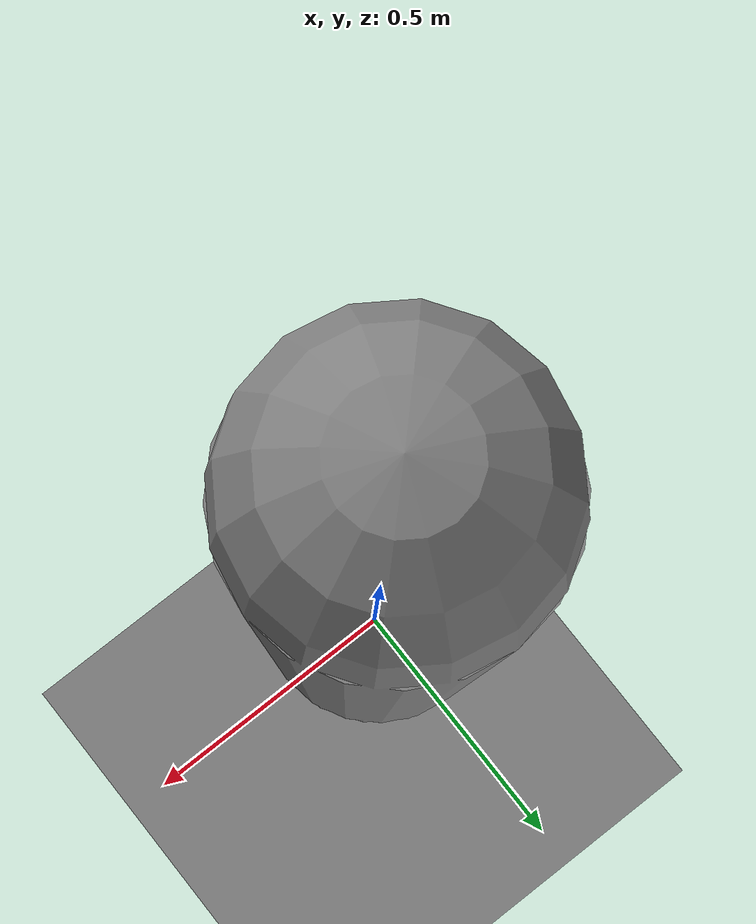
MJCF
<mujoco model="cap_plane_on_surface">
            <option gravity="0 0 0" timestep="0.001"/>
            <worldbody>
                <geom name="floor" type="plane" size="10 10 0.1"/>
                <body name="cap" pos="0 0 0.7">
                    <joint type="free"/>
                    <geom type="capsule" size="0.2 0.5"/>
                </body>
            </worldbody>
        </mujoco>
